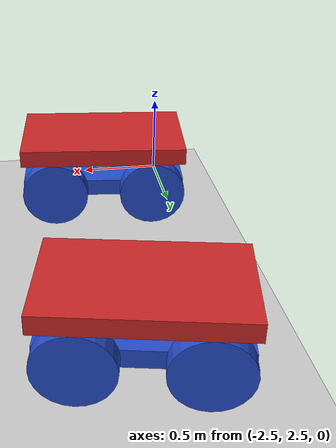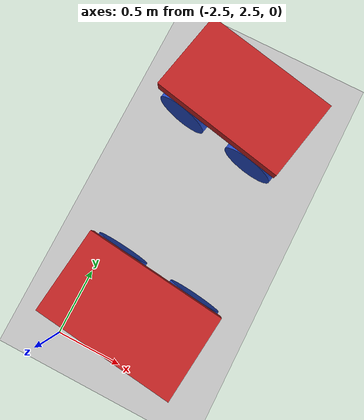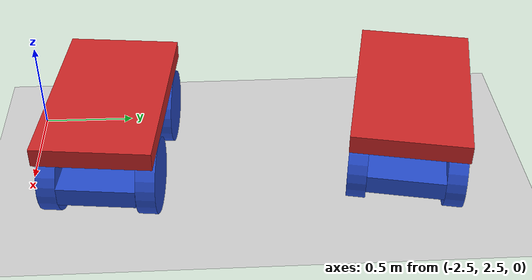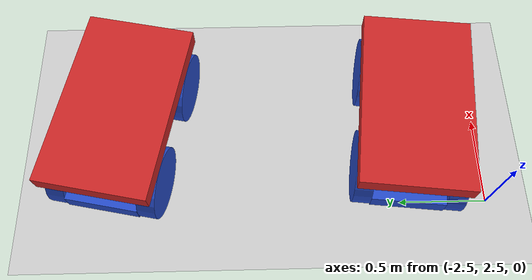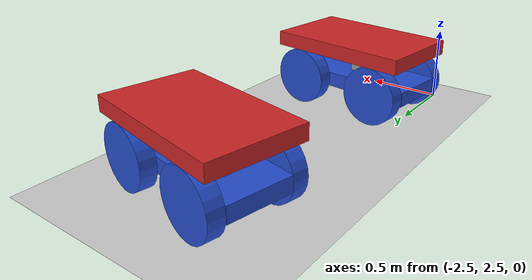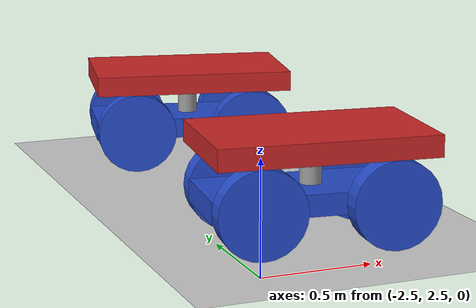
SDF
<sdf version="1.6">
 <world name="default">
  <model name="ground_plane">
   <static>1</static>
   <link name="link">
    <collision name="collision">
     <geometry><plane><normal>0 0 1</normal><size>100 100</size></plane></geometry>
     <surface><friction><ode><mu>100</mu><mu2>50</mu2></ode></friction></surface>
    </collision>
    <visual name="visual">
     <cast_shadows>0</cast_shadows>
     <geometry><plane><normal>0 0 1</normal><size>100 100</size></plane></geometry>
     <material>
      <script><uri>file://media/materials/scripts/gazebo.material</uri><name>Gazebo/Grey</name></script>
     </material>
    </visual>
   </link>
  </model>
  <model name="skid_steer_bot">
   <link name="link_0">
    <pose>0 0 -0.05 0 -0 0</pose>
    <inertial>
     <mass>1</mass>
     <inertia>
      <ixx>0.166667</ixx>
      <ixy>0</ixy>
      <ixz>0</ixz>
      <iyy>0.166667</iyy>
      <iyz>0</iyz>
      <izz>0.166667</izz>
     </inertia>
    </inertial>
    <visual name="visual">
     <geometry><box><size>1 0.4 0.1</size></box></geometry>
     <material>
      <lighting>1</lighting>
      <script><uri>file://media/materials/scripts/gazebo.material</uri><name>Gazebo/Blue</name></script>
      <shader type="pixel"><normal_map>__default__</normal_map></shader>
      <ambient>0.3 0.3 0.3 1</ambient>
      <diffuse>0.7 0.7 0.7 1</diffuse>
      <specular>0.01 0.01 0.01 1</specular>
      <emissive>0 0 0 1</emissive>
     </material>
    </visual>
    <collision name="collision">
     <geometry><box><size>1 0.4 0.1</size></box></geometry>
     <surface>
      <friction>
       <ode><mu>1</mu><mu2>1</mu2><fdir1>0 0 0</fdir1><slip1>0</slip1><slip2>0</slip2></ode>
       <torsional>
        <coefficient>1</coefficient>
        <patch_radius>0</patch_radius>
        <surface_radius>0</surface_radius>
        <use_patch_radius>1</use_patch_radius>
        <ode><slip>0</slip></ode>
       </torsional>
      </friction>
      <bounce><restitution_coefficient>0</restitution_coefficient><threshold>1e+06</threshold></bounce>
      <contact>
       <collide_without_contact>0</collide_without_contact>
       <collide_without_contact_bitmask>1</collide_without_contact_bitmask>
       <collide_bitmask>1</collide_bitmask>
       <ode>
        <soft_cfm>0</soft_cfm>
        <soft_erp>0.2</soft_erp>
        <kp>1e+13</kp>
        <kd>1</kd>
        <max_vel>0.01</max_vel>
        <min_depth>0</min_depth>
       </ode>
       <bullet>
        <split_impulse>1</split_impulse>
        <split_impulse_penetration_threshold>-0.01</split_impulse_penetration_threshold>
        <soft_cfm>0</soft_cfm>
        <soft_erp>0.2</soft_erp>
        <kp>1e+13</kp>
        <kd>1</kd>
       </bullet>
      </contact>
     </surface>
    </collision>
   </link>
   <link name="link_0_clone">
    <pose>0 0 0.2 0 -0 0</pose>
    <inertial>
     <mass>1</mass>
     <inertia>
      <ixx>0.166667</ixx>
      <ixy>0</ixy>
      <ixz>0</ixz>
      <iyy>0.166667</iyy>
      <iyz>0</iyz>
      <izz>0.166667</izz>
     </inertia>
    </inertial>
    <visual name="visual">
     <geometry><box><size>1 0.6 0.1</size></box></geometry>
     <material>
      <lighting>1</lighting>
      <script><uri>file://media/materials/scripts/gazebo.material</uri><name>Gazebo/Red</name></script>
      <shader type="pixel"><normal_map>__default__</normal_map></shader>
      <ambient>0.3 0.3 0.3 1</ambient>
      <diffuse>0.7 0.9 0 1</diffuse>
      <specular>0.01 0.01 0.01 1</specular>
      <emissive>0 0 0 1</emissive>
     </material>
    </visual>
    <collision name="collision">
     <geometry><box><size>1 0.6 0.1</size></box></geometry>
     <surface>
      <friction>
       <ode><mu>1</mu><mu2>1</mu2><fdir1>0 0 0</fdir1><slip1>0</slip1><slip2>0</slip2></ode>
       <torsional>
        <coefficient>1</coefficient>
        <patch_radius>0</patch_radius>
        <surface_radius>0</surface_radius>
        <use_patch_radius>1</use_patch_radius>
        <ode><slip>0</slip></ode>
       </torsional>
      </friction>
      <bounce><restitution_coefficient>0</restitution_coefficient><threshold>1e+06</threshold></bounce>
      <contact>
       <collide_without_contact>0</collide_without_contact>
       <collide_without_contact_bitmask>1</collide_without_contact_bitmask>
       <collide_bitmask>1</collide_bitmask>
       <ode>
        <soft_cfm>0</soft_cfm>
        <soft_erp>0.2</soft_erp>
        <kp>1e+13</kp>
        <kd>1</kd>
        <max_vel>0.01</max_vel>
        <min_depth>0</min_depth>
       </ode>
       <bullet>
        <split_impulse>1</split_impulse>
        <split_impulse_penetration_threshold>-0.01</split_impulse_penetration_threshold>
        <soft_cfm>0</soft_cfm>
        <soft_erp>0.2</soft_erp>
        <kp>1e+13</kp>
        <kd>1</kd>
       </bullet>
      </contact>
     </surface>
    </collision>
   </link>
   <link name="link_1">
    <pose>0.3 -0.250019 -0.05 1.5707 -0 0</pose>
    <inertial>
     <mass>1</mass>
     <inertia><ixx>0.145833</ixx><ixy>0</ixy><ixz>0</ixz><iyy>0.145833</iyy><iyz>0</iyz><izz>0.125</izz></inertia>
    </inertial>
    <visual name="visual">
     <geometry><cylinder><radius>0.2</radius><length>0.1</length></cylinder></geometry>
     <material>
      <lighting>1</lighting>
      <script><uri>file://media/materials/scripts/gazebo.material</uri><name>Gazebo/Blue</name></script>
      <shader type="pixel"><normal_map>__default__</normal_map></shader>
      <ambient>0.3 0.3 0.3 1</ambient>
      <diffuse>0.1 0.1 0.2 1</diffuse>
      <specular>0.01 0.01 0.01 1</specular>
      <emissive>0 0 0 1</emissive>
     </material>
    </visual>
    <collision name="collision">
     <geometry><cylinder><radius>0.2</radius><length>0.1</length></cylinder></geometry>
     <surface>
      <friction>
       <ode><mu>1</mu><mu2>1</mu2><fdir1>0 0 0</fdir1><slip1>0</slip1><slip2>0</slip2></ode>
       <torsional>
        <coefficient>1</coefficient>
        <patch_radius>0</patch_radius>
        <surface_radius>0</surface_radius>
        <use_patch_radius>1</use_patch_radius>
        <ode><slip>0</slip></ode>
       </torsional>
      </friction>
      <bounce><restitution_coefficient>0</restitution_coefficient><threshold>1e+06</threshold></bounce>
      <contact>
       <collide_without_contact>0</collide_without_contact>
       <collide_without_contact_bitmask>1</collide_without_contact_bitmask>
       <collide_bitmask>1</collide_bitmask>
       <ode>
        <soft_cfm>0</soft_cfm>
        <soft_erp>0.2</soft_erp>
        <kp>1e+13</kp>
        <kd>1</kd>
        <max_vel>0.01</max_vel>
        <min_depth>0</min_depth>
       </ode>
       <bullet>
        <split_impulse>1</split_impulse>
        <split_impulse_penetration_threshold>-0.01</split_impulse_penetration_threshold>
        <soft_cfm>0</soft_cfm>
        <soft_erp>0.2</soft_erp>
        <kp>1e+13</kp>
        <kd>1</kd>
       </bullet>
      </contact>
     </surface>
    </collision>
   </link>
   <link name="link_1_clone">
    <pose>0.3 0.250019 -0.05 1.5707 -0 0</pose>
    <inertial>
     <mass>1</mass>
     <inertia><ixx>0.145833</ixx><ixy>0</ixy><ixz>0</ixz><iyy>0.145833</iyy><iyz>0</iyz><izz>0.125</izz></inertia>
    </inertial>
    <visual name="visual">
     <geometry><cylinder><radius>0.2</radius><length>0.1</length></cylinder></geometry>
     <material>
      <lighting>1</lighting>
      <script><uri>file://media/materials/scripts/gazebo.material</uri><name>Gazebo/Blue</name></script>
      <shader type="pixel"><normal_map>__default__</normal_map></shader>
      <ambient>0.3 0.3 0.3 1</ambient>
      <diffuse>0.1 0.1 0.2 1</diffuse>
      <specular>0.01 0.01 0.01 1</specular>
      <emissive>0 0 0 1</emissive>
     </material>
    </visual>
    <collision name="collision">
     <geometry><cylinder><radius>0.2</radius><length>0.1</length></cylinder></geometry>
     <surface>
      <friction>
       <ode><mu>1</mu><mu2>1</mu2><fdir1>0 0 0</fdir1><slip1>0</slip1><slip2>0</slip2></ode>
       <torsional>
        <coefficient>1</coefficient>
        <patch_radius>0</patch_radius>
        <surface_radius>0</surface_radius>
        <use_patch_radius>1</use_patch_radius>
        <ode><slip>0</slip></ode>
       </torsional>
      </friction>
      <bounce><restitution_coefficient>0</restitution_coefficient><threshold>1e+06</threshold></bounce>
      <contact>
       <collide_without_contact>0</collide_without_contact>
       <collide_without_contact_bitmask>1</collide_without_contact_bitmask>
       <collide_bitmask>1</collide_bitmask>
       <ode>
        <soft_cfm>0</soft_cfm>
        <soft_erp>0.2</soft_erp>
        <kp>1e+13</kp>
        <kd>1</kd>
        <max_vel>0.01</max_vel>
        <min_depth>0</min_depth>
       </ode>
       <bullet>
        <split_impulse>1</split_impulse>
        <split_impulse_penetration_threshold>-0.01</split_impulse_penetration_threshold>
        <soft_cfm>0</soft_cfm>
        <soft_erp>0.2</soft_erp>
        <kp>1e+13</kp>
        <kd>1</kd>
       </bullet>
      </contact>
     </surface>
    </collision>
   </link>
   <link name="link_1_clone_0">
    <pose>-0.3 -0.250019 -0.05 1.5707 -0 0</pose>
    <inertial>
     <mass>1</mass>
     <inertia><ixx>0.145833</ixx><ixy>0</ixy><ixz>0</ixz><iyy>0.145833</iyy><iyz>0</iyz><izz>0.125</izz></inertia>
    </inertial>
    <visual name="visual">
     <geometry><cylinder><radius>0.2</radius><length>0.1</length></cylinder></geometry>
     <material>
      <lighting>1</lighting>
      <script><uri>file://media/materials/scripts/gazebo.material</uri><name>Gazebo/Blue</name></script>
      <shader type="pixel"><normal_map>__default__</normal_map></shader>
      <ambient>0.3 0.3 0.3 1</ambient>
      <diffuse>0.1 0.1 0.2 1</diffuse>
      <specular>0.01 0.01 0.01 1</specular>
      <emissive>0 0 0 1</emissive>
     </material>
    </visual>
    <collision name="collision">
     <geometry><cylinder><radius>0.2</radius><length>0.1</length></cylinder></geometry>
     <surface>
      <friction>
       <ode><mu>1</mu><mu2>1</mu2><fdir1>0 0 0</fdir1><slip1>0</slip1><slip2>0</slip2></ode>
       <torsional>
        <coefficient>1</coefficient>
        <patch_radius>0</patch_radius>
        <surface_radius>0</surface_radius>
        <use_patch_radius>1</use_patch_radius>
        <ode><slip>0</slip></ode>
       </torsional>
      </friction>
      <bounce><restitution_coefficient>0</restitution_coefficient><threshold>1e+06</threshold></bounce>
      <contact>
       <collide_without_contact>0</collide_without_contact>
       <collide_without_contact_bitmask>1</collide_without_contact_bitmask>
       <collide_bitmask>1</collide_bitmask>
       <ode>
        <soft_cfm>0</soft_cfm>
        <soft_erp>0.2</soft_erp>
        <kp>1e+13</kp>
        <kd>1</kd>
        <max_vel>0.01</max_vel>
        <min_depth>0</min_depth>
       </ode>
       <bullet>
        <split_impulse>1</split_impulse>
        <split_impulse_penetration_threshold>-0.01</split_impulse_penetration_threshold>
        <soft_cfm>0</soft_cfm>
        <soft_erp>0.2</soft_erp>
        <kp>1e+13</kp>
        <kd>1</kd>
       </bullet>
      </contact>
     </surface>
    </collision>
   </link>
   <link name="link_1_clone_1">
    <pose>-0.3 0.250019 -0.05 1.5707 -0 0</pose>
    <inertial>
     <mass>1</mass>
     <inertia><ixx>0.145833</ixx><ixy>0</ixy><ixz>0</ixz><iyy>0.145833</iyy><iyz>0</iyz><izz>0.125</izz></inertia>
    </inertial>
    <visual name="visual">
     <geometry><cylinder><radius>0.2</radius><length>0.1</length></cylinder></geometry>
     <material>
      <lighting>1</lighting>
      <script><uri>file://media/materials/scripts/gazebo.material</uri><name>Gazebo/Blue</name></script>
      <shader type="pixel"><normal_map>__default__</normal_map></shader>
      <ambient>0.3 0.3 0.3 1</ambient>
      <diffuse>0.1 0.1 0.2 1</diffuse>
      <specular>0.01 0.01 0.01 1</specular>
      <emissive>0 0 0 1</emissive>
     </material>
    </visual>
    <collision name="collision">
     <geometry><cylinder><radius>0.2</radius><length>0.1</length></cylinder></geometry>
     <surface>
      <friction>
       <ode><mu>1</mu><mu2>1</mu2><fdir1>0 0 0</fdir1><slip1>0</slip1><slip2>0</slip2></ode>
       <torsional>
        <coefficient>1</coefficient>
        <patch_radius>0</patch_radius>
        <surface_radius>0</surface_radius>
        <use_patch_radius>1</use_patch_radius>
        <ode><slip>0</slip></ode>
       </torsional>
      </friction>
      <bounce><restitution_coefficient>0</restitution_coefficient><threshold>1e+06</threshold></bounce>
      <contact>
       <collide_without_contact>0</collide_without_contact>
       <collide_without_contact_bitmask>1</collide_without_contact_bitmask>
       <collide_bitmask>1</collide_bitmask>
       <ode>
        <soft_cfm>0</soft_cfm>
        <soft_erp>0.2</soft_erp>
        <kp>1e+13</kp>
        <kd>1</kd>
        <max_vel>0.01</max_vel>
        <min_depth>0</min_depth>
       </ode>
       <bullet>
        <split_impulse>1</split_impulse>
        <split_impulse_penetration_threshold>-0.01</split_impulse_penetration_threshold>
        <soft_cfm>0</soft_cfm>
        <soft_erp>0.2</soft_erp>
        <kp>1e+13</kp>
        <kd>1</kd>
       </bullet>
      </contact>
     </surface>
    </collision>
   </link>
   <link name="link_2">
    <pose>0 0 0.05 0 -0 0</pose>
    <inertial>
     <mass>1</mass>
     <inertia><ixx>0.145833</ixx><ixy>0</ixy><ixz>0</ixz><iyy>0.145833</iyy><iyz>0</iyz><izz>0.125</izz></inertia>
    </inertial>
    <visual name="visual">
     <geometry><cylinder><radius>0.05</radius><length>0.2</length></cylinder></geometry>
     <material>
      <lighting>1</lighting>
      <script><uri>file://media/materials/scripts/gazebo.material</uri><name>Gazebo/Grey</name></script>
      <shader type="pixel"><normal_map>__default__</normal_map></shader>
      <ambient>0.3 0.3 0.3 1</ambient>
      <diffuse>0.7 0.7 0.7 1</diffuse>
      <specular>0.01 0.01 0.01 1</specular>
      <emissive>0 0 0 1</emissive>
     </material>
    </visual>
    <collision name="collision">
     <geometry><cylinder><radius>0.05</radius><length>0.2</length></cylinder></geometry>
     <surface>
      <friction>
       <ode><mu>1</mu><mu2>1</mu2><fdir1>0 0 0</fdir1><slip1>0</slip1><slip2>0</slip2></ode>
       <torsional>
        <coefficient>1</coefficient>
        <patch_radius>0</patch_radius>
        <surface_radius>0</surface_radius>
        <use_patch_radius>1</use_patch_radius>
        <ode><slip>0</slip></ode>
       </torsional>
      </friction>
      <bounce><restitution_coefficient>0</restitution_coefficient><threshold>1e+06</threshold></bounce>
      <contact>
       <collide_without_contact>0</collide_without_contact>
       <collide_without_contact_bitmask>1</collide_without_contact_bitmask>
       <collide_bitmask>1</collide_bitmask>
       <ode>
        <soft_cfm>0</soft_cfm>
        <soft_erp>0.2</soft_erp>
        <kp>1e+13</kp>
        <kd>1</kd>
        <max_vel>0.01</max_vel>
        <min_depth>0</min_depth>
       </ode>
       <bullet>
        <split_impulse>1</split_impulse>
        <split_impulse_penetration_threshold>-0.01</split_impulse_penetration_threshold>
        <soft_cfm>0</soft_cfm>
        <soft_erp>0.2</soft_erp>
        <kp>1e+13</kp>
        <kd>1</kd>
       </bullet>
      </contact>
     </surface>
    </collision>
   </link>
   <joint name="link_0_JOINT_0" type="revolute">
    <parent>link_0</parent>
    <child>link_1</child>
    <axis>
     <xyz>0 0 1</xyz>
     <limit>
      <lower>-1.79769e+308</lower>
      <upper>1.79769e+308</upper>
      <effort>-1</effort>
      <velocity>-1</velocity>
     </limit>
     <dynamics>
      <spring_reference>0</spring_reference>
      <spring_stiffness>0</spring_stiffness>
      <damping>0</damping>
     </dynamics>
     <use_parent_model_frame>0</use_parent_model_frame>
    </axis>
    <physics>
     <ode><limit><cfm>0</cfm><erp>0.2</erp></limit><suspension><cfm>0</cfm><erp>0.2</erp></suspension></ode>
    </physics>
   </joint>
   <joint name="link_0_JOINT_1" type="revolute">
    <parent>link_0</parent>
    <child>link_1_clone</child>
    <axis>
     <xyz>0 0 1</xyz>
     <limit>
      <lower>-1.79769e+308</lower>
      <upper>1.79769e+308</upper>
      <effort>-1</effort>
      <velocity>-1</velocity>
     </limit>
     <dynamics>
      <spring_reference>0</spring_reference>
      <spring_stiffness>0</spring_stiffness>
      <damping>0</damping>
     </dynamics>
     <use_parent_model_frame>0</use_parent_model_frame>
    </axis>
    <physics>
     <ode><limit><cfm>0</cfm><erp>0.2</erp></limit><suspension><cfm>0</cfm><erp>0.2</erp></suspension></ode>
    </physics>
   </joint>
   <joint name="link_0_JOINT_2" type="revolute">
    <parent>link_0</parent>
    <child>link_1_clone_0</child>
    <axis>
     <xyz>0 0 1</xyz>
     <limit>
      <lower>-1.79769e+308</lower>
      <upper>1.79769e+308</upper>
      <effort>-1</effort>
      <velocity>-1</velocity>
     </limit>
     <dynamics>
      <spring_reference>0</spring_reference>
      <spring_stiffness>0</spring_stiffness>
      <damping>0</damping>
     </dynamics>
     <use_parent_model_frame>0</use_parent_model_frame>
    </axis>
    <physics>
     <ode><limit><cfm>0</cfm><erp>0.2</erp></limit><suspension><cfm>0</cfm><erp>0.2</erp></suspension></ode>
    </physics>
   </joint>
   <joint name="link_0_JOINT_3" type="revolute">
    <parent>link_0</parent>
    <child>link_1_clone_1</child>
    <axis>
     <xyz>0 0 1</xyz>
     <limit>
      <lower>-1.79769e+308</lower>
      <upper>1.79769e+308</upper>
      <effort>-1</effort>
      <velocity>-1</velocity>
     </limit>
     <dynamics>
      <spring_reference>0</spring_reference>
      <spring_stiffness>0</spring_stiffness>
      <damping>0</damping>
     </dynamics>
     <use_parent_model_frame>0</use_parent_model_frame>
    </axis>
    <physics>
     <ode><limit><cfm>0</cfm><erp>0.2</erp></limit><suspension><cfm>0</cfm><erp>0.2</erp></suspension></ode>
    </physics>
   </joint>
   <joint name="link_0_JOINT_4" type="fixed">
    <parent>link_0</parent>
    <child>link_2</child>
    <physics>
     <ode><limit><cfm>0</cfm><erp>0.2</erp></limit><suspension><cfm>0</cfm><erp>0.2</erp></suspension></ode>
    </physics>
   </joint>
   <joint name="link_2_JOINT_5" type="fixed">
    <parent>link_2</parent>
    <child>link_0_clone</child>
    <physics>
     <ode><limit><cfm>0</cfm><erp>0.2</erp></limit><suspension><cfm>0</cfm><erp>0.2</erp></suspension></ode>
    </physics>
   </joint>
   <static>0</static>
   <pose>-2.07767 2.94321 0.250005 1e-06 -0 -0.110127</pose>
  </model>
  <model name="skid_steer_bot_0">
   <link name="link_0">
    <pose>0 0 -0.05 0 -0 0</pose>
    <inertial>
     <mass>1</mass>
     <inertia>
      <ixx>0.166667</ixx>
      <ixy>0</ixy>
      <ixz>0</ixz>
      <iyy>0.166667</iyy>
      <iyz>0</iyz>
      <izz>0.166667</izz>
     </inertia>
    </inertial>
    <visual name="visual">
     <geometry><box><size>1 0.4 0.1</size></box></geometry>
     <material>
      <lighting>1</lighting>
      <script><uri>file://media/materials/scripts/gazebo.material</uri><name>Gazebo/Blue</name></script>
      <shader type="pixel"><normal_map>__default__</normal_map></shader>
      <ambient>0.3 0.3 0.3 1</ambient>
      <diffuse>0.7 0.7 0.7 1</diffuse>
      <specular>0.01 0.01 0.01 1</specular>
      <emissive>0 0 0 1</emissive>
     </material>
    </visual>
    <collision name="collision">
     <geometry><box><size>1 0.4 0.1</size></box></geometry>
     <surface>
      <friction>
       <ode><mu>1</mu><mu2>1</mu2><fdir1>0 0 0</fdir1><slip1>0</slip1><slip2>0</slip2></ode>
       <torsional>
        <coefficient>1</coefficient>
        <patch_radius>0</patch_radius>
        <surface_radius>0</surface_radius>
        <use_patch_radius>1</use_patch_radius>
        <ode><slip>0</slip></ode>
       </torsional>
      </friction>
      <bounce><restitution_coefficient>0</restitution_coefficient><threshold>1e+06</threshold></bounce>
      <contact>
       <collide_without_contact>0</collide_without_contact>
       <collide_without_contact_bitmask>1</collide_without_contact_bitmask>
       <collide_bitmask>1</collide_bitmask>
       <ode>
        <soft_cfm>0</soft_cfm>
        <soft_erp>0.2</soft_erp>
        <kp>1e+13</kp>
        <kd>1</kd>
        <max_vel>0.01</max_vel>
        <min_depth>0</min_depth>
       </ode>
       <bullet>
        <split_impulse>1</split_impulse>
        <split_impulse_penetration_threshold>-0.01</split_impulse_penetration_threshold>
        <soft_cfm>0</soft_cfm>
        <soft_erp>0.2</soft_erp>
        <kp>1e+13</kp>
        <kd>1</kd>
       </bullet>
      </contact>
     </surface>
    </collision>
   </link>
   <link name="link_0_clone">
    <pose>0 0 0.2 0 -0 0</pose>
    <inertial>
     <mass>1</mass>
     <inertia>
      <ixx>0.166667</ixx>
      <ixy>0</ixy>
      <ixz>0</ixz>
      <iyy>0.166667</iyy>
      <iyz>0</iyz>
      <izz>0.166667</izz>
     </inertia>
    </inertial>
    <visual name="visual">
     <geometry><box><size>1 0.6 0.1</size></box></geometry>
     <material>
      <lighting>1</lighting>
      <script><uri>file://media/materials/scripts/gazebo.material</uri><name>Gazebo/Red</name></script>
      <shader type="pixel"><normal_map>__default__</normal_map></shader>
      <ambient>0.3 0.3 0.3 1</ambient>
      <diffuse>0.7 0.9 0 1</diffuse>
      <specular>0.01 0.01 0.01 1</specular>
      <emissive>0 0 0 1</emissive>
     </material>
    </visual>
    <collision name="collision">
     <geometry><box><size>1 0.6 0.1</size></box></geometry>
     <surface>
      <friction>
       <ode><mu>1</mu><mu2>1</mu2><fdir1>0 0 0</fdir1><slip1>0</slip1><slip2>0</slip2></ode>
       <torsional>
        <coefficient>1</coefficient>
        <patch_radius>0</patch_radius>
        <surface_radius>0</surface_radius>
        <use_patch_radius>1</use_patch_radius>
        <ode><slip>0</slip></ode>
       </torsional>
      </friction>
      <bounce><restitution_coefficient>0</restitution_coefficient><threshold>1e+06</threshold></bounce>
      <contact>
       <collide_without_contact>0</collide_without_contact>
       <collide_without_contact_bitmask>1</collide_without_contact_bitmask>
       <collide_bitmask>1</collide_bitmask>
       <ode>
        <soft_cfm>0</soft_cfm>
        <soft_erp>0.2</soft_erp>
        <kp>1e+13</kp>
        <kd>1</kd>
        <max_vel>0.01</max_vel>
        <min_depth>0</min_depth>
       </ode>
       <bullet>
        <split_impulse>1</split_impulse>
        <split_impulse_penetration_threshold>-0.01</split_impulse_penetration_threshold>
        <soft_cfm>0</soft_cfm>
        <soft_erp>0.2</soft_erp>
        <kp>1e+13</kp>
        <kd>1</kd>
       </bullet>
      </contact>
     </surface>
    </collision>
   </link>
   <link name="link_1">
    <pose>0.3 -0.250019 -0.05 1.5707 -0 0</pose>
    <inertial>
     <mass>1</mass>
     <inertia><ixx>0.145833</ixx><ixy>0</ixy><ixz>0</ixz><iyy>0.145833</iyy><iyz>0</iyz><izz>0.125</izz></inertia>
    </inertial>
    <visual name="visual">
     <geometry><cylinder><radius>0.2</radius><length>0.1</length></cylinder></geometry>
     <material>
      <lighting>1</lighting>
      <script><uri>file://media/materials/scripts/gazebo.material</uri><name>Gazebo/Blue</name></script>
      <shader type="pixel"><normal_map>__default__</normal_map></shader>
      <ambient>0.3 0.3 0.3 1</ambient>
      <diffuse>0.1 0.1 0.2 1</diffuse>
      <specular>0.01 0.01 0.01 1</specular>
      <emissive>0 0 0 1</emissive>
     </material>
    </visual>
    <collision name="collision">
     <geometry><cylinder><radius>0.2</radius><length>0.1</length></cylinder></geometry>
     <surface>
      <friction>
       <ode><mu>1</mu><mu2>1</mu2><fdir1>0 0 0</fdir1><slip1>0</slip1><slip2>0</slip2></ode>
       <torsional>
        <coefficient>1</coefficient>
        <patch_radius>0</patch_radius>
        <surface_radius>0</surface_radius>
        <use_patch_radius>1</use_patch_radius>
        <ode><slip>0</slip></ode>
       </torsional>
      </friction>
      <bounce><restitution_coefficient>0</restitution_coefficient><threshold>1e+06</threshold></bounce>
      <contact>
       <collide_without_contact>0</collide_without_contact>
       <collide_without_contact_bitmask>1</collide_without_contact_bitmask>
       <collide_bitmask>1</collide_bitmask>
       <ode>
        <soft_cfm>0</soft_cfm>
        <soft_erp>0.2</soft_erp>
        <kp>1e+13</kp>
        <kd>1</kd>
        <max_vel>0.01</max_vel>
        <min_depth>0</min_depth>
       </ode>
       <bullet>
        <split_impulse>1</split_impulse>
        <split_impulse_penetration_threshold>-0.01</split_impulse_penetration_threshold>
        <soft_cfm>0</soft_cfm>
        <soft_erp>0.2</soft_erp>
        <kp>1e+13</kp>
        <kd>1</kd>
       </bullet>
      </contact>
     </surface>
    </collision>
   </link>
   <link name="link_1_clone">
    <pose>0.3 0.250019 -0.05 1.5707 -0 0</pose>
    <inertial>
     <mass>1</mass>
     <inertia><ixx>0.145833</ixx><ixy>0</ixy><ixz>0</ixz><iyy>0.145833</iyy><iyz>0</iyz><izz>0.125</izz></inertia>
    </inertial>
    <visual name="visual">
     <geometry><cylinder><radius>0.2</radius><length>0.1</length></cylinder></geometry>
     <material>
      <lighting>1</lighting>
      <script><uri>file://media/materials/scripts/gazebo.material</uri><name>Gazebo/Blue</name></script>
      <shader type="pixel"><normal_map>__default__</normal_map></shader>
      <ambient>0.3 0.3 0.3 1</ambient>
      <diffuse>0.1 0.1 0.2 1</diffuse>
      <specular>0.01 0.01 0.01 1</specular>
      <emissive>0 0 0 1</emissive>
     </material>
    </visual>
    <collision name="collision">
     <geometry><cylinder><radius>0.2</radius><length>0.1</length></cylinder></geometry>
     <surface>
      <friction>
       <ode><mu>1</mu><mu2>1</mu2><fdir1>0 0 0</fdir1><slip1>0</slip1><slip2>0</slip2></ode>
       <torsional>
        <coefficient>1</coefficient>
        <patch_radius>0</patch_radius>
        <surface_radius>0</surface_radius>
        <use_patch_radius>1</use_patch_radius>
        <ode><slip>0</slip></ode>
       </torsional>
      </friction>
      <bounce><restitution_coefficient>0</restitution_coefficient><threshold>1e+06</threshold></bounce>
      <contact>
       <collide_without_contact>0</collide_without_contact>
       <collide_without_contact_bitmask>1</collide_without_contact_bitmask>
       <collide_bitmask>1</collide_bitmask>
       <ode>
        <soft_cfm>0</soft_cfm>
        <soft_erp>0.2</soft_erp>
        <kp>1e+13</kp>
        <kd>1</kd>
        <max_vel>0.01</max_vel>
        <min_depth>0</min_depth>
       </ode>
       <bullet>
        <split_impulse>1</split_impulse>
        <split_impulse_penetration_threshold>-0.01</split_impulse_penetration_threshold>
        <soft_cfm>0</soft_cfm>
        <soft_erp>0.2</soft_erp>
        <kp>1e+13</kp>
        <kd>1</kd>
       </bullet>
      </contact>
     </surface>
    </collision>
   </link>
   <link name="link_1_clone_0">
    <pose>-0.3 -0.250019 -0.05 1.5707 -0 0</pose>
    <inertial>
     <mass>1</mass>
     <inertia><ixx>0.145833</ixx><ixy>0</ixy><ixz>0</ixz><iyy>0.145833</iyy><iyz>0</iyz><izz>0.125</izz></inertia>
    </inertial>
    <visual name="visual">
     <geometry><cylinder><radius>0.2</radius><length>0.1</length></cylinder></geometry>
     <material>
      <lighting>1</lighting>
      <script><uri>file://media/materials/scripts/gazebo.material</uri><name>Gazebo/Blue</name></script>
      <shader type="pixel"><normal_map>__default__</normal_map></shader>
      <ambient>0.3 0.3 0.3 1</ambient>
      <diffuse>0.1 0.1 0.2 1</diffuse>
      <specular>0.01 0.01 0.01 1</specular>
      <emissive>0 0 0 1</emissive>
     </material>
    </visual>
    <collision name="collision">
     <geometry><cylinder><radius>0.2</radius><length>0.1</length></cylinder></geometry>
     <surface>
      <friction>
       <ode><mu>1</mu><mu2>1</mu2><fdir1>0 0 0</fdir1><slip1>0</slip1><slip2>0</slip2></ode>
       <torsional>
        <coefficient>1</coefficient>
        <patch_radius>0</patch_radius>
        <surface_radius>0</surface_radius>
        <use_patch_radius>1</use_patch_radius>
        <ode><slip>0</slip></ode>
       </torsional>
      </friction>
      <bounce><restitution_coefficient>0</restitution_coefficient><threshold>1e+06</threshold></bounce>
      <contact>
       <collide_without_contact>0</collide_without_contact>
       <collide_without_contact_bitmask>1</collide_without_contact_bitmask>
       <collide_bitmask>1</collide_bitmask>
       <ode>
        <soft_cfm>0</soft_cfm>
        <soft_erp>0.2</soft_erp>
        <kp>1e+13</kp>
        <kd>1</kd>
        <max_vel>0.01</max_vel>
        <min_depth>0</min_depth>
       </ode>
       <bullet>
        <split_impulse>1</split_impulse>
        <split_impulse_penetration_threshold>-0.01</split_impulse_penetration_threshold>
        <soft_cfm>0</soft_cfm>
        <soft_erp>0.2</soft_erp>
        <kp>1e+13</kp>
        <kd>1</kd>
       </bullet>
      </contact>
     </surface>
    </collision>
   </link>
   <link name="link_1_clone_1">
    <pose>-0.3 0.250019 -0.05 1.5707 -0 0</pose>
    <inertial>
     <mass>1</mass>
     <inertia><ixx>0.145833</ixx><ixy>0</ixy><ixz>0</ixz><iyy>0.145833</iyy><iyz>0</iyz><izz>0.125</izz></inertia>
    </inertial>
    <visual name="visual">
     <geometry><cylinder><radius>0.2</radius><length>0.1</length></cylinder></geometry>
     <material>
      <lighting>1</lighting>
      <script><uri>file://media/materials/scripts/gazebo.material</uri><name>Gazebo/Blue</name></script>
      <shader type="pixel"><normal_map>__default__</normal_map></shader>
      <ambient>0.3 0.3 0.3 1</ambient>
      <diffuse>0.1 0.1 0.2 1</diffuse>
      <specular>0.01 0.01 0.01 1</specular>
      <emissive>0 0 0 1</emissive>
     </material>
    </visual>
    <collision name="collision">
     <geometry><cylinder><radius>0.2</radius><length>0.1</length></cylinder></geometry>
     <surface>
      <friction>
       <ode><mu>1</mu><mu2>1</mu2><fdir1>0 0 0</fdir1><slip1>0</slip1><slip2>0</slip2></ode>
       <torsional>
        <coefficient>1</coefficient>
        <patch_radius>0</patch_radius>
        <surface_radius>0</surface_radius>
        <use_patch_radius>1</use_patch_radius>
        <ode><slip>0</slip></ode>
       </torsional>
      </friction>
      <bounce><restitution_coefficient>0</restitution_coefficient><threshold>1e+06</threshold></bounce>
      <contact>
       <collide_without_contact>0</collide_without_contact>
       <collide_without_contact_bitmask>1</collide_without_contact_bitmask>
       <collide_bitmask>1</collide_bitmask>
       <ode>
        <soft_cfm>0</soft_cfm>
        <soft_erp>0.2</soft_erp>
        <kp>1e+13</kp>
        <kd>1</kd>
        <max_vel>0.01</max_vel>
        <min_depth>0</min_depth>
       </ode>
       <bullet>
        <split_impulse>1</split_impulse>
        <split_impulse_penetration_threshold>-0.01</split_impulse_penetration_threshold>
        <soft_cfm>0</soft_cfm>
        <soft_erp>0.2</soft_erp>
        <kp>1e+13</kp>
        <kd>1</kd>
       </bullet>
      </contact>
     </surface>
    </collision>
   </link>
   <link name="link_2">
    <pose>0 0 0.05 0 -0 0</pose>
    <inertial>
     <mass>1</mass>
     <inertia><ixx>0.145833</ixx><ixy>0</ixy><ixz>0</ixz><iyy>0.145833</iyy><iyz>0</iyz><izz>0.125</izz></inertia>
    </inertial>
    <visual name="visual">
     <geometry><cylinder><radius>0.05</radius><length>0.2</length></cylinder></geometry>
     <material>
      <lighting>1</lighting>
      <script><uri>file://media/materials/scripts/gazebo.material</uri><name>Gazebo/Grey</name></script>
      <shader type="pixel"><normal_map>__default__</normal_map></shader>
      <ambient>0.3 0.3 0.3 1</ambient>
      <diffuse>0.7 0.7 0.7 1</diffuse>
      <specular>0.01 0.01 0.01 1</specular>
      <emissive>0 0 0 1</emissive>
     </material>
    </visual>
    <collision name="collision">
     <geometry><cylinder><radius>0.05</radius><length>0.2</length></cylinder></geometry>
     <surface>
      <friction>
       <ode><mu>1</mu><mu2>1</mu2><fdir1>0 0 0</fdir1><slip1>0</slip1><slip2>0</slip2></ode>
       <torsional>
        <coefficient>1</coefficient>
        <patch_radius>0</patch_radius>
        <surface_radius>0</surface_radius>
        <use_patch_radius>1</use_patch_radius>
        <ode><slip>0</slip></ode>
       </torsional>
      </friction>
      <bounce><restitution_coefficient>0</restitution_coefficient><threshold>1e+06</threshold></bounce>
      <contact>
       <collide_without_contact>0</collide_without_contact>
       <collide_without_contact_bitmask>1</collide_without_contact_bitmask>
       <collide_bitmask>1</collide_bitmask>
       <ode>
        <soft_cfm>0</soft_cfm>
        <soft_erp>0.2</soft_erp>
        <kp>1e+13</kp>
        <kd>1</kd>
        <max_vel>0.01</max_vel>
        <min_depth>0</min_depth>
       </ode>
       <bullet>
        <split_impulse>1</split_impulse>
        <split_impulse_penetration_threshold>-0.01</split_impulse_penetration_threshold>
        <soft_cfm>0</soft_cfm>
        <soft_erp>0.2</soft_erp>
        <kp>1e+13</kp>
        <kd>1</kd>
       </bullet>
      </contact>
     </surface>
    </collision>
   </link>
   <joint name="link_0_JOINT_0" type="revolute">
    <parent>link_0</parent>
    <child>link_1</child>
    <axis>
     <xyz>0 0 1</xyz>
     <limit>
      <lower>-1.79769e+308</lower>
      <upper>1.79769e+308</upper>
      <effort>-1</effort>
      <velocity>-1</velocity>
     </limit>
     <dynamics>
      <spring_reference>0</spring_reference>
      <spring_stiffness>0</spring_stiffness>
      <damping>0</damping>
     </dynamics>
     <use_parent_model_frame>0</use_parent_model_frame>
    </axis>
    <physics>
     <ode><limit><cfm>0</cfm><erp>0.2</erp></limit><suspension><cfm>0</cfm><erp>0.2</erp></suspension></ode>
    </physics>
   </joint>
   <joint name="link_0_JOINT_1" type="revolute">
    <parent>link_0</parent>
    <child>link_1_clone</child>
    <axis>
     <xyz>0 0 1</xyz>
     <limit>
      <lower>-1.79769e+308</lower>
      <upper>1.79769e+308</upper>
      <effort>-1</effort>
      <velocity>-1</velocity>
     </limit>
     <dynamics>
      <spring_reference>0</spring_reference>
      <spring_stiffness>0</spring_stiffness>
      <damping>0</damping>
     </dynamics>
     <use_parent_model_frame>0</use_parent_model_frame>
    </axis>
    <physics>
     <ode><limit><cfm>0</cfm><erp>0.2</erp></limit><suspension><cfm>0</cfm><erp>0.2</erp></suspension></ode>
    </physics>
   </joint>
   <joint name="link_0_JOINT_2" type="revolute">
    <parent>link_0</parent>
    <child>link_1_clone_0</child>
    <axis>
     <xyz>0 0 1</xyz>
     <limit>
      <lower>-1.79769e+308</lower>
      <upper>1.79769e+308</upper>
      <effort>-1</effort>
      <velocity>-1</velocity>
     </limit>
     <dynamics>
      <spring_reference>0</spring_reference>
      <spring_stiffness>0</spring_stiffness>
      <damping>0</damping>
     </dynamics>
     <use_parent_model_frame>0</use_parent_model_frame>
    </axis>
    <physics>
     <ode><limit><cfm>0</cfm><erp>0.2</erp></limit><suspension><cfm>0</cfm><erp>0.2</erp></suspension></ode>
    </physics>
   </joint>
   <joint name="link_0_JOINT_3" type="revolute">
    <parent>link_0</parent>
    <child>link_1_clone_1</child>
    <axis>
     <xyz>0 0 1</xyz>
     <limit>
      <lower>-1.79769e+308</lower>
      <upper>1.79769e+308</upper>
      <effort>-1</effort>
      <velocity>-1</velocity>
     </limit>
     <dynamics>
      <spring_reference>0</spring_reference>
      <spring_stiffness>0</spring_stiffness>
      <damping>0</damping>
     </dynamics>
     <use_parent_model_frame>0</use_parent_model_frame>
    </axis>
    <physics>
     <ode><limit><cfm>0</cfm><erp>0.2</erp></limit><suspension><cfm>0</cfm><erp>0.2</erp></suspension></ode>
    </physics>
   </joint>
   <joint name="link_0_JOINT_4" type="fixed">
    <parent>link_0</parent>
    <child>link_2</child>
    <physics>
     <ode><limit><cfm>0</cfm><erp>0.2</erp></limit><suspension><cfm>0</cfm><erp>0.2</erp></suspension></ode>
    </physics>
   </joint>
   <joint name="link_2_JOINT_5" type="fixed">
    <parent>link_2</parent>
    <child>link_0_clone</child>
    <physics>
     <ode><limit><cfm>0</cfm><erp>0.2</erp></limit><suspension><cfm>0</cfm><erp>0.2</erp></suspension></ode>
    </physics>
   </joint>
   <static>0</static>
   <pose>-2.06699 4.5509 0.250001 1e-06 1.2e-05 -0.202583</pose>
  </model>
 </world>
</sdf>
